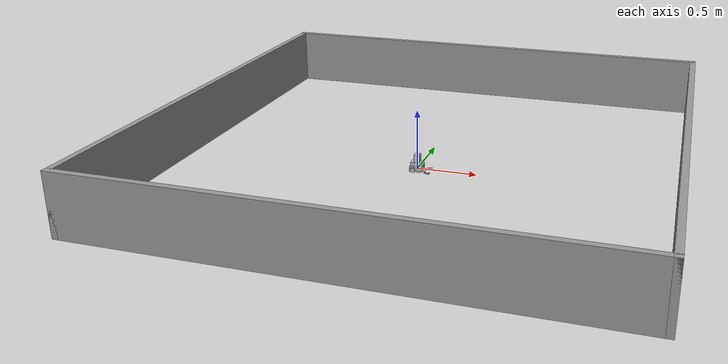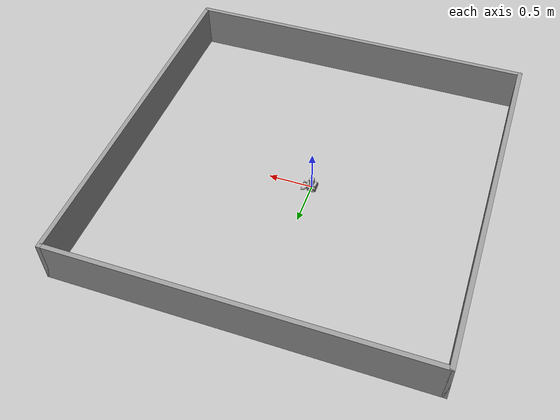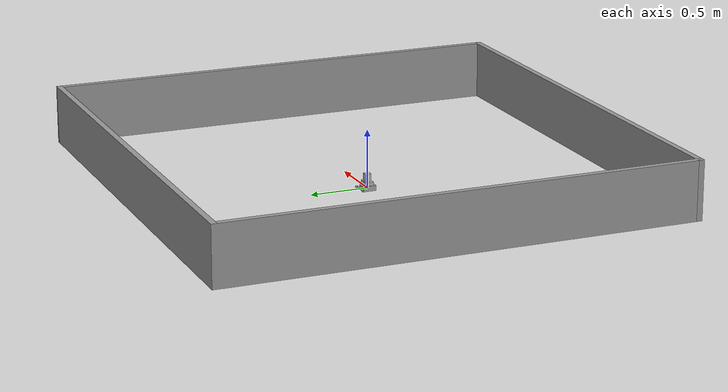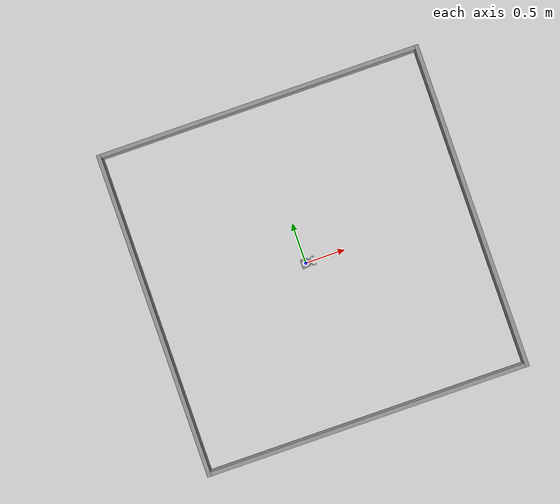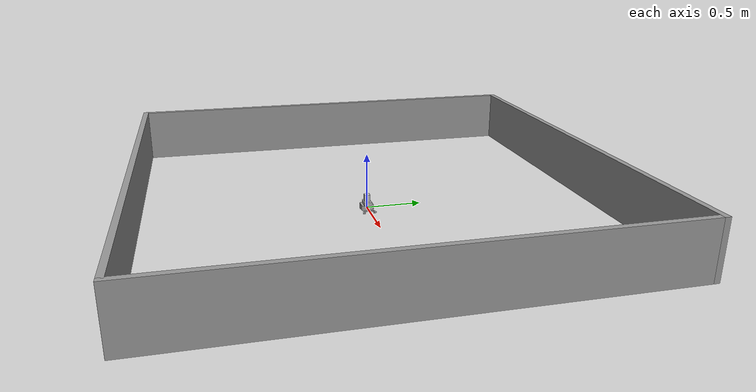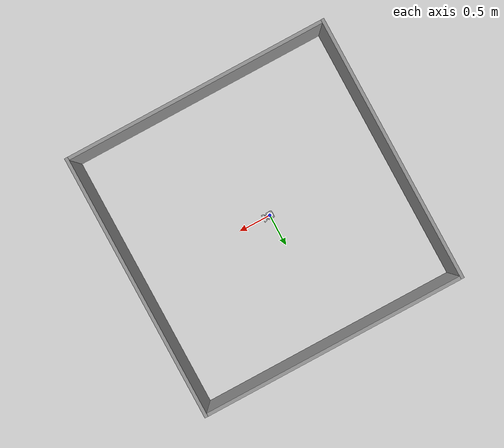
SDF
<?xml version='1.0'?>
<sdf version='1.7'>

    <model name="robot_with_camera">
        <pose>0 0 0 0 0 0</pose>

        <include name="thymio" >
            <uri>model://thymio</uri>
            <filename>thymio.sdf</filename>
            <pose>0 0 0 0 0 0</pose>
        </include>

        <include name="camera">
            <uri>file://[PATH-TO-PKG]/objects</uri>
            <filename>camera.sdf</filename>
            <pose>0.09 0 0.05 0 0 0</pose>
        </include>

        <link name="robot_flag">
            <visual name="robot_flag_image">
                <pose>0 0 0.09 0 0 0</pose>
                <geometry>
                    <box>
                        <size>0.05 0.05 0.075</size>
                    </box>
                </geometry>
                <material>
                    <script>
                        <uri>file://media/materials/scripts/gazebo.material</uri>
                        <name>[MATERIAL]</name>
                    </script>
                </material>
            </visual>

            <inertial>
                <pose>0 0 0.0005 0 0 0</pose>
                <mass>0.00003</mass>
                <inertia>
                <ixx>2.21000000e-11</ixx>
                <ixy>0.000000</ixy>
                <ixz>0.000000</ixz>
                <iyy>6.01000000e-11</iyy>
                <iyz>0.000000</iyz>
                <izz>7.72000000e-11</izz>
                </inertia>
            </inertial>
        </link>

        <joint name="robot_flag_joint" type="fixed">
            <type>fixed</type>
            <parent>thymio::base_link</parent>
            <child>robot_flag</child>
            <origin>0 0 0 0 0 0</origin>
        </joint>

        <joint name="camera_robot_joint" type="fixed">
            <type>fixed</type>
            <parent>thymio::base_link</parent>
            <child>camera::camera_link</child>
            <origin>0 0 0 0 0 0</origin>
        </joint>

    </model>

</sdf>

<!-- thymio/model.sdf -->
<sdf version='1.4'>
  <model name="thymio">
    <pose>0 0 0 0 0 0</pose>
    <static>false</static>
    <link name='chassis'>
      <pose>0 0 .01 0 0 0</pose>
      <inertial>
        <mass>0.270</mass>
        <inertia>
          <ixx>1.272320e-04</ixx>
          <ixy>-1.138297e-06</ixy>
          <ixz>-1.762013e-21</ixz>
          <iyy>1.260759e-04</iyy>
          <iyz>-2.367320e-23</iyz>
          <izz>2.183003e-04</izz>
        </inertia>
      </inertial>
      <self_collide>True</self_collide>

      <collision name='collision'>
        <pose>0 0 0 0 0 0</pose>
        <geometry>
          <mesh>
            <uri>model://thymio/meshes/thymio.dae</uri>
          </mesh>
        </geometry>
      </collision>

      <visual name='visual'>
        <pose>0 0 0 0 0 0</pose>
        <geometry>
          <mesh>
            <uri>model://thymio/meshes/thymio.dae</uri>
          </mesh>
        </geometry>
      </visual>

      <collision name='caster_collision'>
        <pose>0.045 0 -0.02 0 0 0</pose>
          <geometry>
            <sphere>
              <radius>.01</radius>
            </sphere>
          </geometry>

          <surface>
            <friction>
              <ode>
                <mu>0</mu>
                <mu2>0</mu2>
                <slip1>1.0</slip1>
                <slip2>1.0</slip2>
              </ode>
            </friction>
          </surface>
      </collision>

      <visual name='caster_visual'>
        <pose>0.045 0 -0.02 0 0 0</pose>
          <geometry>
            <sphere>
              <radius>.01</radius>
            </sphere>
          </geometry>
      </visual>

      <collision name='gripper_collision'>
        <pose>0.045 0.085 -0.022 0 0 3.14</pose>
        <geometry>
          <mesh>
            <uri>model://thymio/meshes/gripper.dae</uri>
            <scale>0.1 0.1 0.1</scale>
          </mesh>
        </geometry>
      </collision>

      <visual name='gripper_visual'>
        <pose>0.045 0.085 -0.022 0 0 3.14</pose>
          <geometry>
            <mesh>
              <uri>model://thymio/meshes/gripper.dae</uri>
              <scale>0.1 0.1 0.1</scale>
            </mesh>
          </geometry>
      </visual>

      <collision name='reapberry_visual'>
        <pose>0 0 0.038 0 0 0</pose>
          <geometry>
            <mesh>
              <uri>model://thymio/meshes/raspberry_case.dae</uri>
              <scale>0.11 0.11 0.11</scale>
            </mesh>
          </geometry>
      </collision>

      <visual name='raspberry_visual'>
        <pose>0 0 0.038 0 0 0</pose>
          <geometry>
            <mesh>
              <uri>model://thymio/meshes/raspberry_case.dae</uri>
              <scale>0.11 0.11 0.11</scale>
            </mesh>
          </geometry>
      </visual>

    </link>

    <link name="left_wheel">

      <pose>-0.027 0.05 0 0 1.5707 1.5707</pose>
      <collision name="collision">
        <geometry>
          <cylinder>
            <radius>.02</radius>
            <length>.015</length>
          </cylinder>
        </geometry>
      </collision>

      <visual name="visual">
        <geometry>
          <cylinder>
            <radius>.02</radius>
            <length>.015</length>
          </cylinder>
        </geometry>
      </visual>

    </link>

    <link name="right_wheel">
      <pose>-0.027 -0.05 0 0 1.5707 1.5707</pose>
      <collision name="collision">
        <geometry>
          <cylinder>
            <radius>.02</radius>
            <length>.015</length>
          </cylinder>
        </geometry>
      </collision>

      <visual name="visual">
        <geometry>
          <cylinder>
            <radius>.02</radius>
            <length>.015</length>
          </cylinder>
        </geometry>
      </visual>

    </link>

    <joint type="revolute" name="left_wheel_hinge">
      <pose>0 0 -0.04 0 0 0</pose>
      <child>left_wheel</child>
      <parent>chassis</parent>
      <axis>
        <xyz>0 0 1</xyz>
        <use_parent_model_frame>0</use_parent_model_frame>
          <limit>
            <effort>3.924000e-01</effort>
            <velocity>5.235988e+00</velocity>
          </limit>
      </axis>
    </joint>

    <joint type="revolute" name="right_wheel_hinge">
      <pose>0 0 0.04 0 3.14 0</pose>
      <child>right_wheel</child>
      <parent>chassis</parent>
      <axis>
        <xyz>0 0 1</xyz>
        <use_parent_model_frame>0</use_parent_model_frame>
        <limit>
          <effort>3.924000e-01</effort>
          <velocity>5.235988e+00</velocity>
        </limit>
      </axis>
    </joint>

    <link name="laser_front_link">
      <pose>0.045 0 0 0 0 0</pose>
      <sensor name="laser_front" type="ray">
      <ray>
       <scan>
         <horizontal>
           <samples>640</samples>
           <resolution>1</resolution>
           <min_angle>-0.011111</min_angle>
           <max_angle>0.011111</max_angle>

         </horizontal>
       </scan>
       <range>
         <min>0.08</min>
         <max>10</max>
         <resolution>0.01</resolution>
       </range>
      </ray>
      <visualize>true</visualize>
      </sensor>
    </link>

    <joint name="laser_front_joint" type="fixed">
      <child>laser_front_link</child>
      <parent>chassis</parent>
    </joint>

    <link name="laser_front_right_link">
      <pose>0.045 -0.015 0 0 0 -0.2617994</pose>
      <sensor name="laser_front_right" type="ray">
      <ray>
       <scan>
         <horizontal>
           <samples>640</samples>
           <resolution>1</resolution>
           <min_angle>-0.011111</min_angle>
           <max_angle>0.011111</max_angle>

         </horizontal>
       </scan>
       <range>
         <min>0.08</min>
         <max>10</max>
         <resolution>0.01</resolution>
       </range>
      </ray>
      <visualize>true</visualize>
      </sensor>
    </link>

    <joint name="laser_front_right_joint" type="fixed">
      <child>laser_front_right_link</child>
      <parent>chassis</parent>
    </joint>

    <link name="laser_front_left_link">
      <pose>0.045 0.015 0 0 0 0.2617994</pose>
      <sensor name="laser_front_left" type="ray">
      <ray>
       <scan>
         <horizontal>
           <samples>640</samples>
           <resolution>1</resolution>
           <min_angle>-0.011111</min_angle>
           <max_angle>0.011111</max_angle>

         </horizontal>
       </scan>
       <range>
         <min>0.08</min>
         <max>10</max>
         <resolution>0.01</resolution>
       </range>
      </ray>
      <visualize>true</visualize>
      </sensor>
    </link>

    <joint name="laser_front_left_joint" type="fixed">
      <child>laser_front_left_link</child>
      <parent>chassis</parent>
    </joint>

    <link name="laser_front_right_far_link">
      <pose>0.045 -0.045 0 0 0 -0.5235988</pose>
      <sensor name="laser_front_right_far" type="ray">
      <ray>
       <scan>
         <horizontal>
           <samples>640</samples>
           <resolution>1</resolution>
           <min_angle>-0.011111</min_angle>
           <max_angle>0.011111</max_angle>

         </horizontal>
       </scan>
       <range>
         <min>0.08</min>
         <max>10</max>
         <resolution>0.01</resolution>
       </range>
      </ray>
      <visualize>true</visualize>
      </sensor>
    </link>

    <joint name="laser_front_right_far_joint" type="fixed">
      <child>laser_front_right_far_link</child>
      <parent>chassis</parent>
    </joint>

    <link name="laser_front_left_far_link">
      <pose>0.045 0.045 0 0 0 0.5235988</pose>
      <sensor name="laser_front_left_far" type="ray">
      <ray>
       <scan>
         <horizontal>
           <samples>640</samples>
           <resolution>1</resolution>
           <min_angle>-0.011111</min_angle>
           <max_angle>0.011111</max_angle>

         </horizontal>
       </scan>
       <range>
         <min>0.08</min>
         <max>10</max>
         <resolution>0.01</resolution>
       </range>
      </ray>
      <visualize>true</visualize>
      </sensor>
    </link>

    <joint name="laser_front_left_far_joint" type="fixed">
      <child>laser_front_left_far_link</child>
      <parent>chassis</parent>
    </joint>

    <link name="laser_back_right_link">
      <pose>-0.045 -0.045 0 0 0 3.14</pose>
      <sensor name="laser_back_right" type="ray">
      <ray>
       <scan>
         <horizontal>
           <samples>640</samples>
           <resolution>1</resolution>
           <min_angle>-0.011111</min_angle>
           <max_angle>0.011111</max_angle>

         </horizontal>
       </scan>
       <range>
         <min>0.08</min>
         <max>10</max>
         <resolution>0.01</resolution>
       </range>
      </ray>
      <visualize>true</visualize>
      </sensor>
    </link>

    <joint name="laser_back_right_joint" type="fixed">
      <child>laser_back_right_link</child>
      <parent>chassis</parent>
    </joint>

    <link name="laser_back_left_link">
      <pose>-0.045 0.045 0 0 0 3.14</pose>
      <sensor name="laser_back_left" type="ray">
      <ray>
       <scan>
         <horizontal>
           <samples>640</samples>
           <resolution>1</resolution>
           <min_angle>-0.011111</min_angle>
           <max_angle>0.011111</max_angle>

         </horizontal>
       </scan>
       <range>
         <min>0.08</min>
         <max>10</max>
         <resolution>0.01</resolution>
       </range>
      </ray>
      <visualize>true</visualize>
      </sensor>
    </link>

    <joint name="laser_back_left_joint" type="fixed">
      <child>laser_back_left_link</child>
      <parent>chassis</parent>
    </joint>

    <plugin name="robot_controller" filename="libRobotControlPlugin.so">
      <rv:robot_config xmlns:rv="https://github.com/ElteHupkes/revolve">
        <rv:update_rate>8.000000e+00</rv:update_rate>

        <rv:brain></rv:brain>
        <rv:motor joint="left_wheel_hinge" type="velocity" max_velocity="5.235988e+00"  min_velocity="-5.235988e+00" id="module3__rotate" part_id="module3"></rv:motor>
        <rv:motor joint="right_wheel_hinge" type="velocity" max_velocity="5.235988e+00"  min_velocity="-5.235988e+00" id="module4__rotate" part_id="module4"></rv:motor>
      </rv:robot_config>
    </plugin>

  </model>
</sdf>

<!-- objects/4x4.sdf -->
<sdf version='1.7'>

<model name='Arena'>
    <pose>0 0 0 0 -0 0</pose>
    <link name='Wall_13'>
      <collision name='Wall_13_Collision'>
        <geometry>
          <box>
            <size>4.05 0.05 0.5</size>
          </box>
        </geometry>
        <pose>0 0 0.25 0 -0 0</pose>
      </collision>
      <visual name='Wall_13_Visual'>
        <pose>0 0 0.25 0 -0 0</pose>
        <geometry>
          <box>
            <size>4.05 0.05 0.5</size>
          </box>
        </geometry>
        <material>
          <script>
            <uri>file://media/materials/scripts/gazebo.material</uri>
            <name>Gazebo/Grey</name>
          </script>
          <ambient>1 1 1 1</ambient>
        </material>
        <meta>
          <layer>0</layer>
        </meta>
      </visual>
      <pose>-2 0 0 0 -0 1.5708</pose>
    </link>
    <link name='Wall_15'>
      <collision name='Wall_15_Collision'>
        <geometry>
          <box>
            <size>4.05 0.05 0.5</size>
          </box>
        </geometry>
        <pose>0 0 0.25 0 -0 0</pose>
      </collision>
      <visual name='Wall_15_Visual'>
        <pose>0 0 0.25 0 -0 0</pose>
        <geometry>
          <box>
            <size>4.05 0.05 0.5</size>
          </box>
        </geometry>
        <material>
          <script>
            <uri>file://media/materials/scripts/gazebo.material</uri>
            <name>Gazebo/Grey</name>
          </script>
          <ambient>1 1 1 1</ambient>
        </material>
        <meta>
          <layer>0</layer>
        </meta>
      </visual>
      <pose>2 0 0 0 -0 1.5708</pose>
    </link>
    <link name='Wall_17'>
      <collision name='Wall_17_Collision'>
        <geometry>
          <box>
            <size>4.05 0.05 0.5</size>
          </box>
        </geometry>
        <pose>0 0 0.25 0 -0 0</pose>
      </collision>
      <visual name='Wall_17_Visual'>
        <pose>0 0 0.25 0 -0 0</pose>
        <geometry>
          <box>
            <size>4.05 0.05 0.5</size>
          </box>
        </geometry>
        <material>
          <script>
            <uri>file://media/materials/scripts/gazebo.material</uri>
            <name>Gazebo/Grey</name>
          </script>
          <ambient>1 1 1 1</ambient>
        </material>
        <meta>
          <layer>0</layer>
        </meta>
      </visual>
      <pose>0 -2 0 0 -0 0</pose>
    </link>
    <link name='Wall_7'>
      <collision name='Wall_7_Collision'>
        <geometry>
          <box>
            <size>4.05 0.05 0.5</size>
          </box>
        </geometry>
        <pose>0 0 0.25 0 -0 0</pose>
      </collision>
      <visual name='Wall_7_Visual'>
        <pose>0 0 0.25 0 -0 0</pose>
        <geometry>
          <box>
            <size>4.05 0.05 0.5</size>
          </box>
        </geometry>
        <material>
          <script>
            <uri>file://media/materials/scripts/gazebo.material</uri>
            <name>Gazebo/Grey</name>
          </script>
          <ambient>1 1 1 1</ambient>
        </material>
        <meta>
          <layer>0</layer>
        </meta>
      </visual>
      <pose>0 2 0 0 -0 0</pose>
    </link>
    <static>1</static>
   </model>
</sdf>
